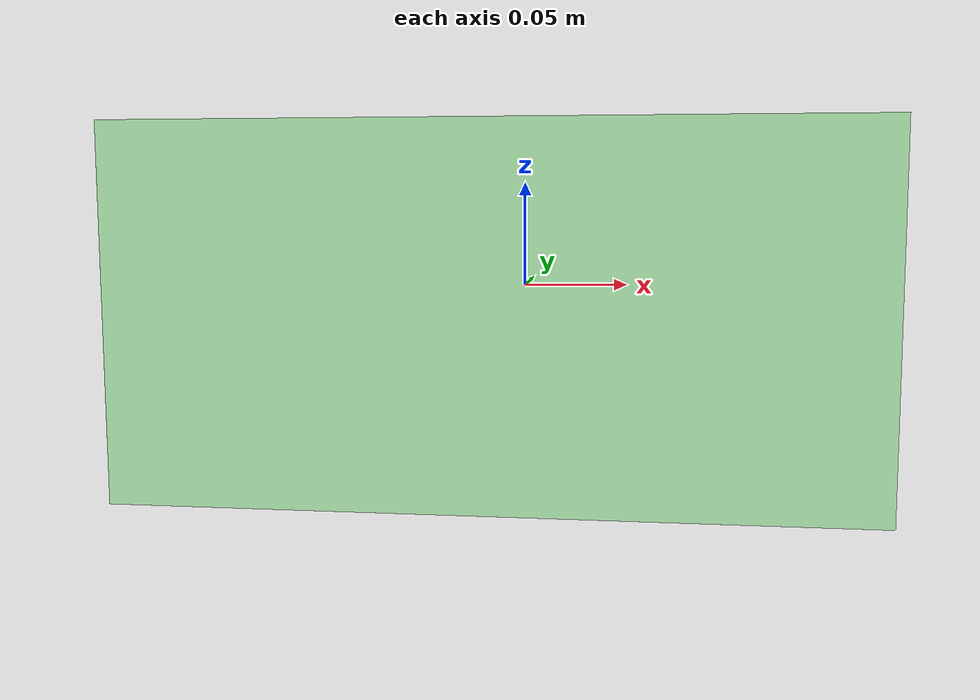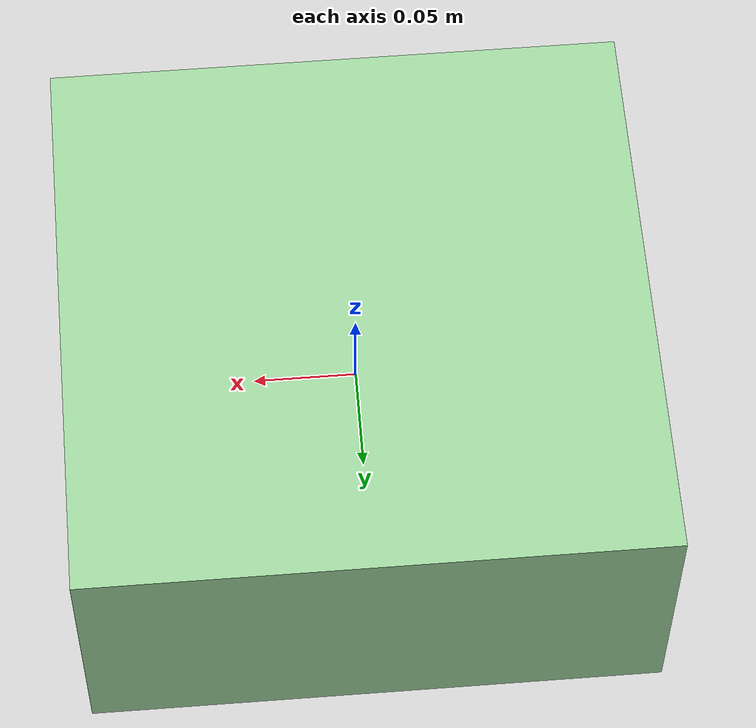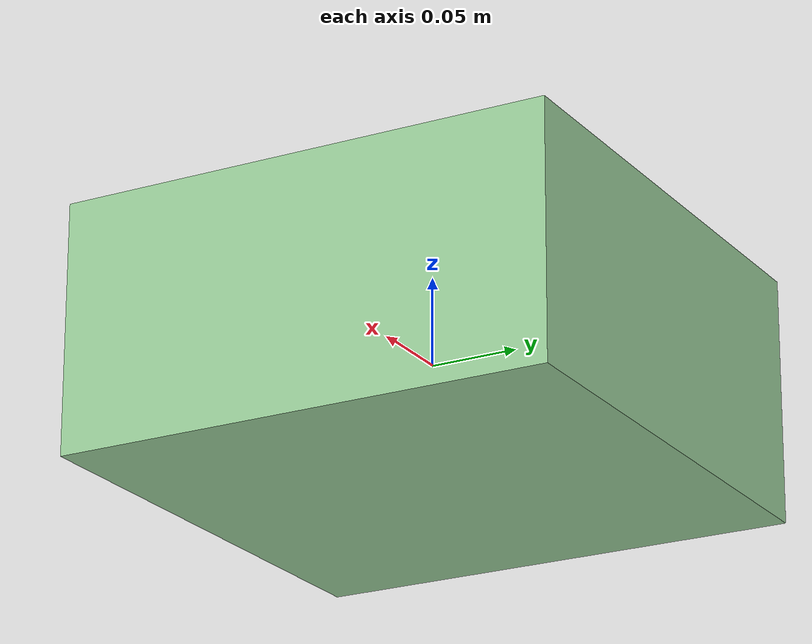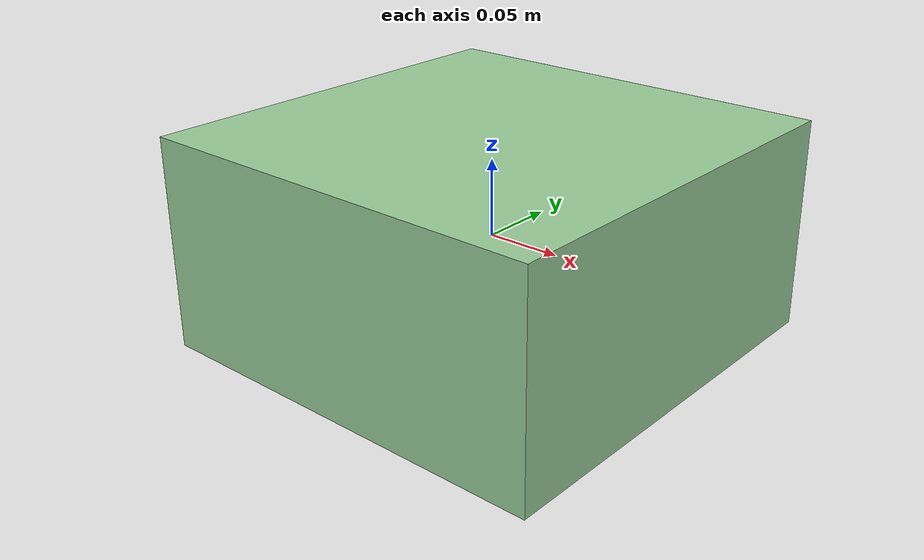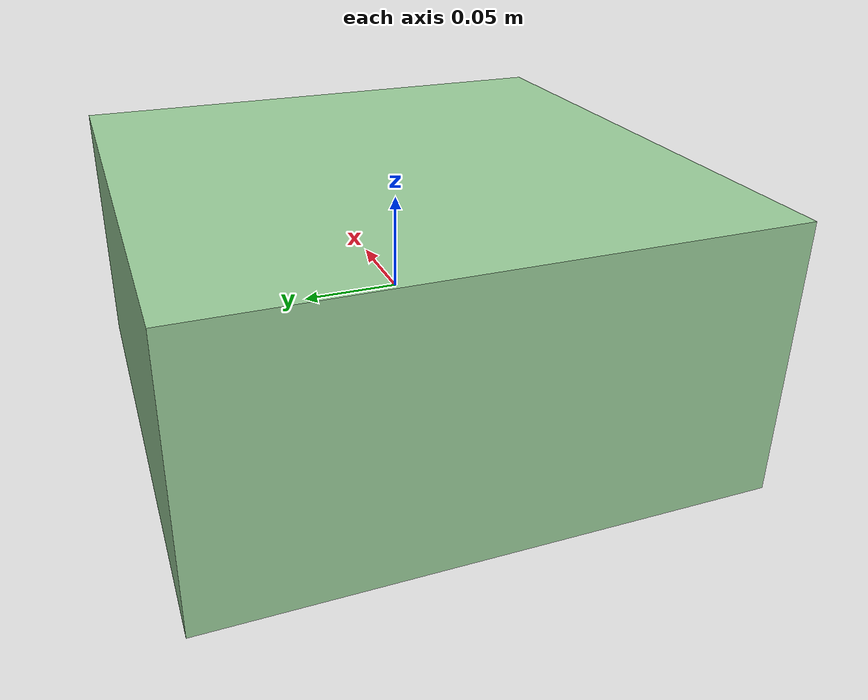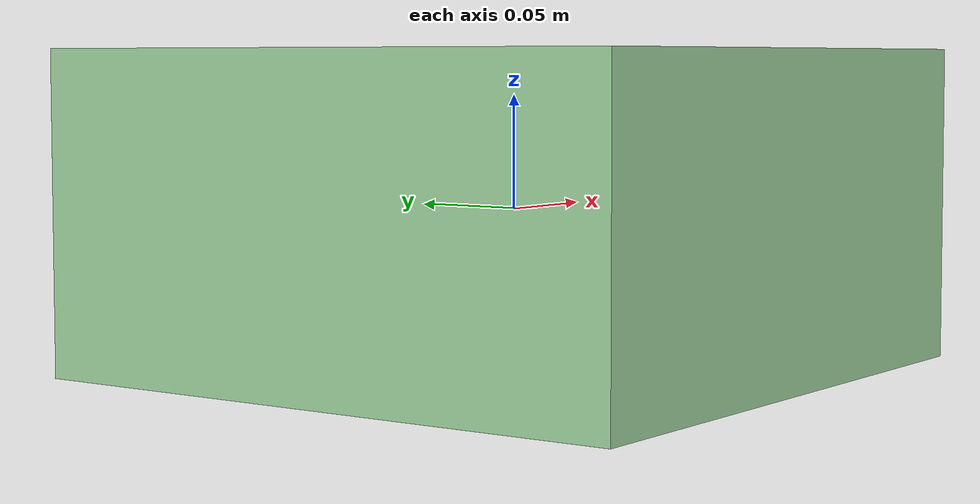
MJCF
<mujoco model="object">
  <compiler angle="radian"/>
  <default>
    <geom friction="0.1 0.3 0.3" solref=".02 1" solimp="0 .8 .01" material="self" density="100.0"/>
  </default>
  <asset>
    <material name="self" rgba=".6 .8 .6 1"/>
  </asset>
  <worldbody>
    <camera name="float_far"  pos="-2.5 0 2" xyaxes="0 -1 0 .5 0 1" mode="trackcom" fovy="70"/>

    <body name="object_body" pos="0 0 0">
      <geom name="object_geom" type="box" size="0.14 0.14 0.07" density="7."/>
    </body>

  </worldbody>
</mujoco>
